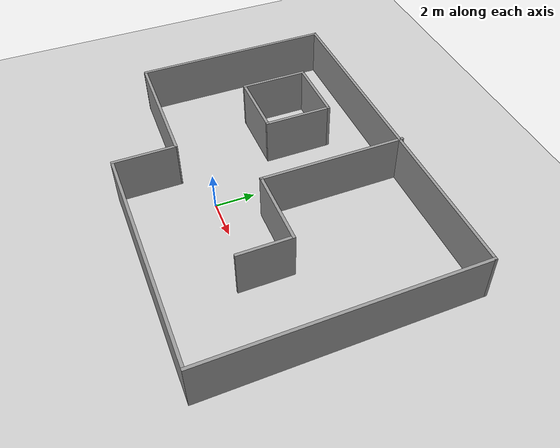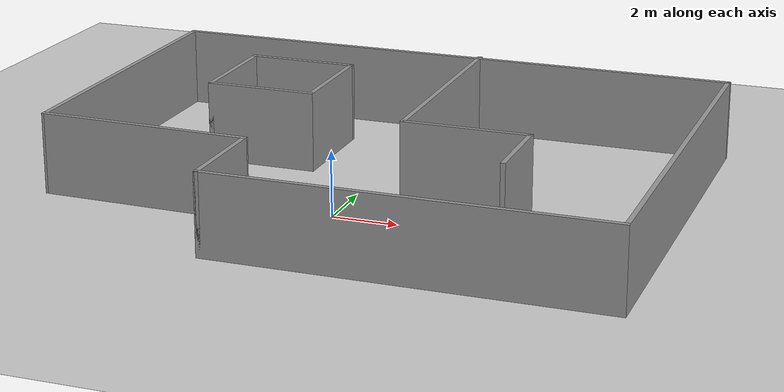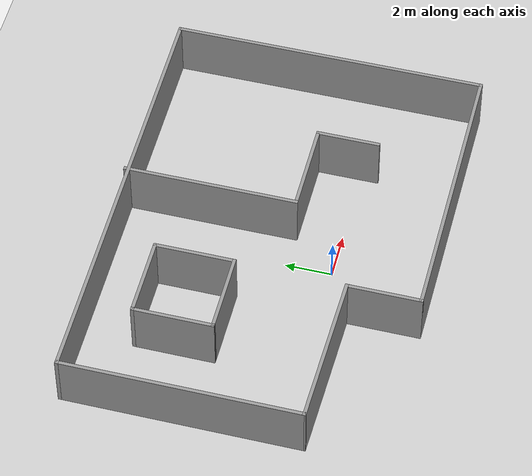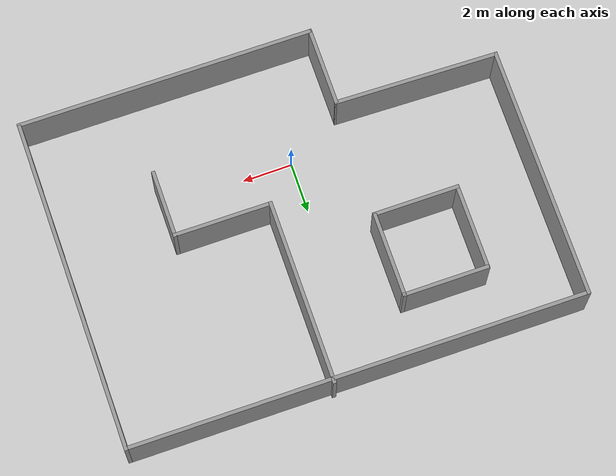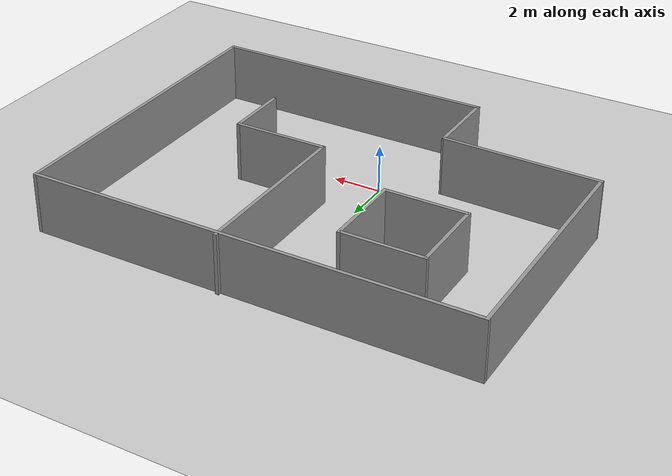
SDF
<sdf version="1.7">
 <world name="default">
  <light name="sun" type="directional">
   <pose>0 0 10 0 -0 0</pose>
   <diffuse>0.8 0.8 0.8 1</diffuse>
   <specular>0.2 0.2 0.2 1</specular>
   <attenuation>
    <range>1000</range>
    <constant>0.9</constant>
    <linear>0.01</linear>
    <quadratic>0.001</quadratic>
   </attenuation>
   <direction>-0.5 0.1 -0.9</direction>
   <spot><inner_angle>0</inner_angle><outer_angle>0</outer_angle><falloff>0</falloff></spot>
  </light>
  <model name="ground_plane">
   <static>1</static>
   <link name="link">
    <collision name="collision">
     <geometry><plane><normal>0 0 1</normal><size>100 100</size></plane></geometry>
     <surface>
      <contact><collide_bitmask>65535</collide_bitmask></contact>
      <friction><ode><mu>100</mu><mu2>50</mu2></ode></friction>
     </surface>
    </collision>
    <visual name="visual">
     <cast_shadows>0</cast_shadows>
     <geometry><plane><normal>0 0 1</normal><size>100 100</size></plane></geometry>
     <material>
      <script><uri>file://media/materials/scripts/gazebo.material</uri><name>Gazebo/Grey</name></script>
     </material>
    </visual>
   </link>
  </model>
  <gravity>0 0 -9.8</gravity>
  <magnetic_field>6e-06 2.3e-05 -4.2e-05</magnetic_field>
  <atmosphere type="adiabatic"/>
  <physics type="ode">
   <max_step_size>0.001</max_step_size>
   <real_time_factor>1</real_time_factor>
   <real_time_update_rate>1000</real_time_update_rate>
  </physics>
  <scene><ambient>0.4 0.4 0.4 1</ambient><background>0.7 0.7 0.7 1</background><shadows>1</shadows></scene>
  <audio><device>default</device></audio>
  <spherical_coordinates>
   <surface_model>EARTH_WGS84</surface_model>
   <latitude_deg>0</latitude_deg>
   <longitude_deg>0</longitude_deg>
   <elevation>0</elevation>
   <heading_deg>0</heading_deg>
  </spherical_coordinates>
  <model name="test01">
   <pose>0.451645 2.53123 0 0 -0 0</pose>
   <link name="Wall_0">
    <collision name="Wall_0_Collision">
     <geometry><box><size>3.25 0.15 2.5</size></box></geometry>
     <pose>0 0 1.25 0 -0 0</pose>
    </collision>
    <visual name="Wall_0_Visual">
     <pose>0 0 1.25 0 -0 0</pose>
     <geometry><box><size>3.25 0.15 2.5</size></box></geometry>
     <material>
      <script><uri>file://media/materials/scripts/gazebo.material</uri><name>Gazebo/Grey</name></script>
      <ambient>1 1 1 1</ambient>
     </material>
     <meta><layer>0</layer></meta>
    </visual>
    <pose>-2.67415 -5.18723 0 0 -0 -1.5708</pose>
   </link>
   <link name="Wall_1">
    <collision name="Wall_1_Collision">
     <geometry><box><size>12 0.15 2.5</size></box></geometry>
     <pose>0 0 1.25 0 -0 0</pose>
    </collision>
    <visual name="Wall_1_Visual">
     <pose>0 0 1.25 0 -0 0</pose>
     <geometry><box><size>12 0.15 2.5</size></box></geometry>
     <material>
      <script><uri>file://media/materials/scripts/gazebo.material</uri><name>Gazebo/Grey</name></script>
      <ambient>1 1 1 1</ambient>
     </material>
     <meta><layer>0</layer></meta>
    </visual>
    <pose>3.25086 -6.73723 0 0 -0 0</pose>
   </link>
   <link name="Wall_11">
    <collision name="Wall_11_Collision">
     <geometry><box><size>3.5 0.15 2.5</size></box></geometry>
     <pose>0 0 1.25 0 -0 0</pose>
    </collision>
    <visual name="Wall_11_Visual">
     <pose>0 0 1.25 0 -0 0</pose>
     <geometry><box><size>3.5 0.15 2.5</size></box></geometry>
     <material>
      <script><uri>file://media/materials/scripts/gazebo.material</uri><name>Gazebo/Grey</name></script>
      <ambient>1 1 1 1</ambient>
     </material>
     <meta><layer>0</layer></meta>
    </visual>
    <pose>-5.92147 2.76162 0 0 -0 -1.5708</pose>
   </link>
   <link name="Wall_12">
    <collision name="Wall_12_Collision">
     <geometry><box><size>3.5 0.15 2.5</size></box></geometry>
     <pose>0 0 1.25 0 -0 0</pose>
    </collision>
    <visual name="Wall_12_Visual">
     <pose>0 0 1.25 0 -0 0</pose>
     <geometry><box><size>3.5 0.15 2.5</size></box></geometry>
     <material>
      <script><uri>file://media/materials/scripts/gazebo.material</uri><name>Gazebo/Grey</name></script>
      <ambient>1 1 1 1</ambient>
     </material>
     <meta><layer>0</layer></meta>
    </visual>
    <pose>-4.24647 1.08662 0 0 -0 0</pose>
   </link>
   <link name="Wall_13">
    <collision name="Wall_13_Collision">
     <geometry><box><size>3.5 0.15 2.5</size></box></geometry>
     <pose>0 0 1.25 0 -0 0</pose>
    </collision>
    <visual name="Wall_13_Visual">
     <pose>0 0 1.25 0 -0 0</pose>
     <geometry><box><size>3.5 0.15 2.5</size></box></geometry>
     <material>
      <script><uri>file://media/materials/scripts/gazebo.material</uri><name>Gazebo/Grey</name></script>
      <ambient>1 1 1 1</ambient>
     </material>
     <meta><layer>0</layer></meta>
    </visual>
    <pose>-2.57147 2.76162 0 0 -0 1.5708</pose>
   </link>
   <link name="Wall_14">
    <collision name="Wall_14_Collision">
     <geometry><box><size>3.5 0.15 2.5</size></box></geometry>
     <pose>0 0 1.25 0 -0 0</pose>
    </collision>
    <visual name="Wall_14_Visual">
     <pose>0 0 1.25 0 -0 0</pose>
     <geometry><box><size>3.5 0.15 2.5</size></box></geometry>
     <material>
      <script><uri>file://media/materials/scripts/gazebo.material</uri><name>Gazebo/Grey</name></script>
      <ambient>1 1 1 1</ambient>
     </material>
     <meta><layer>0</layer></meta>
    </visual>
    <pose>-4.24647 4.43662 0 0 -0 3.14159</pose>
   </link>
   <link name="Wall_2">
    <collision name="Wall_2_Collision">
     <geometry><box><size>13.5 0.15 2.5</size></box></geometry>
     <pose>0 0 1.25 0 -0 0</pose>
    </collision>
    <visual name="Wall_2_Visual">
     <pose>0 0 1.25 0 -0 0</pose>
     <geometry><box><size>13.5 0.15 2.5</size></box></geometry>
     <material>
      <script><uri>file://media/materials/scripts/gazebo.material</uri><name>Gazebo/Grey</name></script>
      <ambient>1 1 1 1</ambient>
     </material>
     <meta><layer>0</layer></meta>
    </visual>
    <pose>9.17585 -0.062227 0 0 -0 1.5708</pose>
   </link>
   <link name="Wall_3">
    <collision name="Wall_3_Collision">
     <geometry><box><size>18.5 0.15 2.5</size></box></geometry>
     <pose>0 0 1.25 0 -0 0</pose>
    </collision>
    <visual name="Wall_3_Visual">
     <pose>0 0 1.25 0 -0 0</pose>
     <geometry><box><size>18.5 0.15 2.5</size></box></geometry>
     <material>
      <script><uri>file://media/materials/scripts/gazebo.material</uri><name>Gazebo/Grey</name></script>
      <ambient>1 1 1 1</ambient>
     </material>
     <meta><layer>0</layer></meta>
    </visual>
    <pose>0.000855 6.61277 0 0 -0 3.14159</pose>
   </link>
   <link name="Wall_4">
    <collision name="Wall_4_Collision">
     <geometry><box><size>10.25 0.15 2.5</size></box></geometry>
     <pose>0 0 1.25 0 -0 0</pose>
    </collision>
    <visual name="Wall_4_Visual">
     <pose>0 0 1.25 0 -0 0</pose>
     <geometry><box><size>10.25 0.15 2.5</size></box></geometry>
     <material>
      <script><uri>file://media/materials/scripts/gazebo.material</uri><name>Gazebo/Grey</name></script>
      <ambient>1 1 1 1</ambient>
     </material>
     <meta><layer>0</layer></meta>
    </visual>
    <pose>-9.17414 1.56277 0 0 -0 -1.5708</pose>
   </link>
   <link name="Wall_5">
    <collision name="Wall_5_Collision">
     <geometry><box><size>6.65173 0.15 2.5</size></box></geometry>
     <pose>0 0 1.25 0 -0 0</pose>
    </collision>
    <visual name="Wall_5_Visual">
     <pose>0 0 1.25 0 -0 0</pose>
     <geometry><box><size>6.65173 0.15 2.5</size></box></geometry>
     <material>
      <script><uri>file://media/materials/scripts/gazebo.material</uri><name>Gazebo/Grey</name></script>
      <ambient>1 1 1 1</ambient>
     </material>
     <meta><layer>0</layer></meta>
    </visual>
    <pose>-5.92415 -3.56223 0 0 -0 -0.023073</pose>
   </link>
   <link name="Wall_7">
    <collision name="Wall_7_Collision">
     <geometry><box><size>7.5 0.15 2.5</size></box></geometry>
     <pose>0 0 1.25 0 -0 0</pose>
    </collision>
    <visual name="Wall_7_Visual">
     <pose>0 0 1.25 0 -0 0</pose>
     <geometry><box><size>7.5 0.15 2.5</size></box></geometry>
     <material>
      <script><uri>file://media/materials/scripts/gazebo.material</uri><name>Gazebo/Grey</name></script>
      <ambient>1 1 1 1</ambient>
     </material>
     <meta><layer>0</layer></meta>
    </visual>
    <pose>1.03386 3.06223 0 0 -0 -1.5708</pose>
   </link>
   <link name="Wall_8">
    <collision name="Wall_8_Collision">
     <geometry><box><size>4 0.15 2.5</size></box></geometry>
     <pose>0 0 1.25 0 -0 0</pose>
    </collision>
    <visual name="Wall_8_Visual">
     <pose>0 0 1.25 0 -0 0</pose>
     <geometry><box><size>4 0.15 2.5</size></box></geometry>
     <material>
      <script><uri>file://media/materials/scripts/gazebo.material</uri><name>Gazebo/Grey</name></script>
      <ambient>1 1 1 1</ambient>
     </material>
     <meta><layer>0</layer></meta>
    </visual>
    <pose>2.95886 -0.612773 0 0 -0 0</pose>
   </link>
   <link name="Wall_9">
    <collision name="Wall_9_Collision">
     <geometry><box><size>2.75 0.15 2.5</size></box></geometry>
     <pose>0 0 1.25 0 -0 0</pose>
    </collision>
    <visual name="Wall_9_Visual">
     <pose>0 0 1.25 0 -0 0</pose>
     <geometry><box><size>2.75 0.15 2.5</size></box></geometry>
     <material>
      <script><uri>file://media/materials/scripts/gazebo.material</uri><name>Gazebo/Grey</name></script>
      <ambient>1 1 1 1</ambient>
     </material>
     <meta><layer>0</layer></meta>
    </visual>
    <pose>4.88386 -1.91277 0 0 -0 -1.5708</pose>
   </link>
   <static>1</static>
  </model>
 </world>
</sdf>
